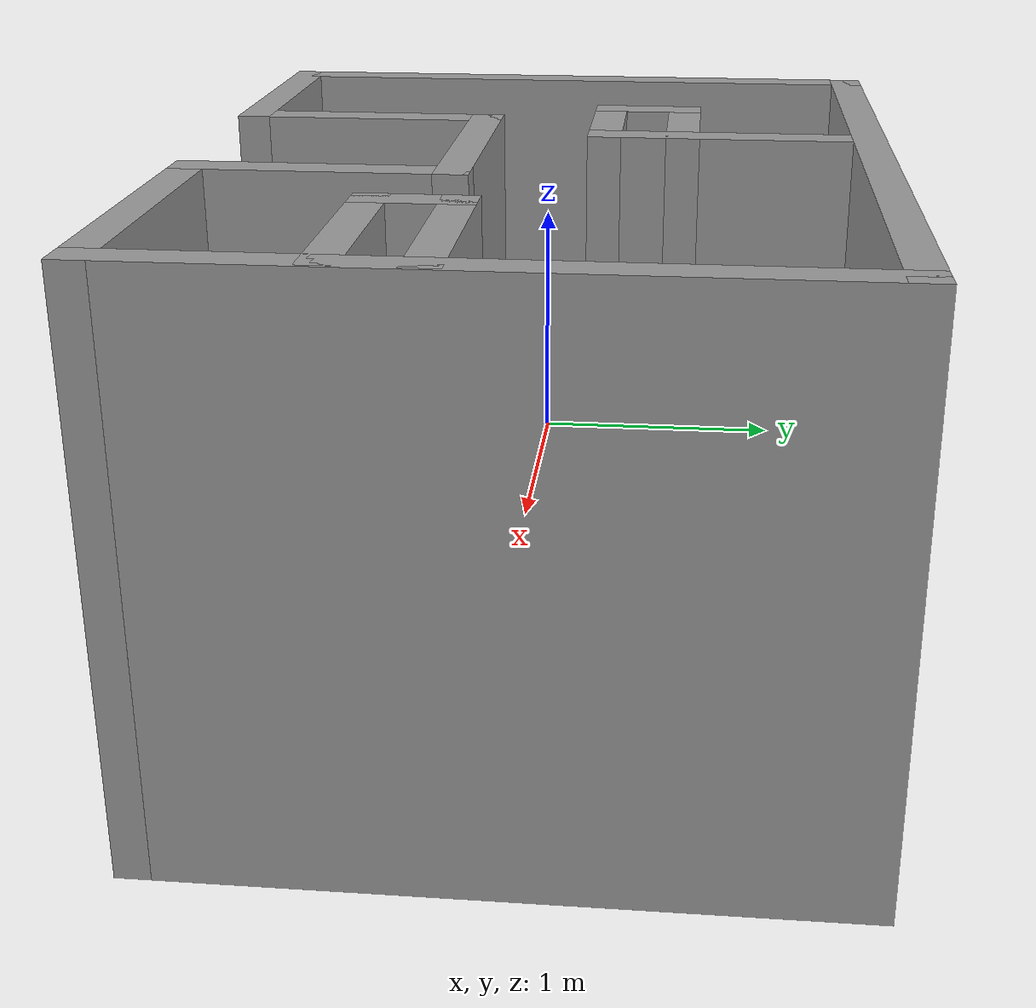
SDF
<?xml version='1.0'?>
<sdf version='1.6'>
  <model name='capstone_map'>
    <pose frame=''>0.08079 -0.021487 0 0 -0 0</pose>
    <link name='Wall_1'>
      <collision name='Wall_1_Collision'>
        <geometry>
          <box>
            <size>3.7 0.15 2.5</size>
          </box>
        </geometry>
        <pose frame=''>0 0 0.05 0 -0 0</pose>
      </collision>
      <visual name='Wall_1_Visual'>
        <pose frame=''>0 0 0.05 0 -0 0</pose>
        <geometry>
          <box>
            <size>3.7 0.15 2.5</size>
          </box>
        </geometry>
        <material>
          <script>
            <uri>file://media/materials/scripts/gazebo.material</uri>
            <name>Gazebo/Grey</name>
          </script>
          <ambient>1 1 1 1</ambient>
        </material>
        <meta>
          <layer>0</layer>
        </meta>
      </visual>
      <pose frame=''>0 1.425 0 0 -0 0</pose>
    </link>
    <link name='Wall_10'>
      <collision name='Wall_10_Collision'>
        <geometry>
          <box>
            <size>1.25 0.15 2.5</size>
          </box>
        </geometry>
        <pose frame=''>0 0 0.05 0 -0 0</pose>
      </collision>
      <visual name='Wall_10_Visual'>
        <pose frame=''>0 0 0.05 0 -0 0</pose>
        <geometry>
          <box>
            <size>1.25 0.15 2.5</size>
          </box>
        </geometry>
        <material>
          <script>
            <uri>file://media/materials/scripts/gazebo.material</uri>
            <name>Gazebo/Grey</name>
          </script>
          <ambient>1 1 1 1</ambient>
        </material>
        <meta>
          <layer>0</layer>
        </meta>
      </visual>
      <pose frame=''>-0.361312 0.800672 0 0 -0 -1.5708</pose>
    </link>
    <link name='Wall_11'>
      <collision name='Wall_11_Collision'>
        <geometry>
          <box>
            <size>0.75 0.15 2.5</size>
          </box>
        </geometry>
        <pose frame=''>0 0 0.05 0 -0 0</pose>
      </collision>
      <visual name='Wall_11_Visual'>
        <pose frame=''>0 0 0.05 0 -0 0</pose>
        <geometry>
          <box>
            <size>0.75 0.15 2.5</size>
          </box>
        </geometry>
        <material>
          <script>
            <uri>file://media/materials/scripts/gazebo.material</uri>
            <name>Gazebo/Grey</name>
          </script>
          <ambient>1 1 1 1</ambient>
        </material>
        <meta>
          <layer>0</layer>
        </meta>
      </visual>
      <pose frame=''>-0.661312 0.250672 0 0 -0 3.14159</pose>
    </link>
    <link name='Wall_14'>
      <collision name='Wall_14_Collision'>
        <geometry>
          <box>
            <size>0.5 0.15 2.5</size>
          </box>
        </geometry>
        <pose frame=''>0 0 0.05 0 -0 0</pose>
      </collision>
      <visual name='Wall_14_Visual'>
        <pose frame=''>0 0 0.05 0 -0 0</pose>
        <geometry>
          <box>
            <size>0.5 0.15 2.5</size>
          </box>
        </geometry>
        <material>
          <script>
            <uri>file://media/materials/scripts/gazebo.material</uri>
            <name>Gazebo/Grey</name>
          </script>
          <ambient>1 1 1 1</ambient>
        </material>
        <meta>
          <layer>0</layer>
        </meta>
      </visual>
      <pose frame=''>-0.961312 0.425672 0 0 -0 1.5708</pose>
    </link>
    <link name='Wall_15'>
      <collision name='Wall_15_Collision'>
        <geometry>
          <box>
            <size>0.75 0.15 2.5</size>
          </box>
        </geometry>
        <pose frame=''>0 0 0.05 0 -0 0</pose>
      </collision>
      <visual name='Wall_15_Visual'>
        <pose frame=''>0 0 0.05 0 -0 0</pose>
        <geometry>
          <box>
            <size>0.75 0.15 2.5</size>
          </box>
        </geometry>
        <material>
          <script>
            <uri>file://media/materials/scripts/gazebo.material</uri>
            <name>Gazebo/Grey</name>
          </script>
          <ambient>1 1 1 1</ambient>
        </material>
        <meta>
          <layer>0</layer>
        </meta>
      </visual>
      <pose frame=''>-0.661312 0.600672 0 0 -0 0</pose>
    </link>
    <link name='Wall_2'>
      <collision name='Wall_2_Collision'>
        <geometry>
          <box>
            <size>3 0.15 2.5</size>
          </box>
        </geometry>
        <pose frame=''>0 0 0.05 0 -0 0</pose>
      </collision>
      <visual name='Wall_2_Visual'>
        <pose frame=''>0 0 0.05 0 -0 0</pose>
        <geometry>
          <box>
            <size>3 0.15 2.5</size>
          </box>
        </geometry>
        <material>
          <script>
            <uri>file://media/materials/scripts/gazebo.material</uri>
            <name>Gazebo/Grey</name>
          </script>
          <ambient>1 1 1 1</ambient>
        </material>
        <meta>
          <layer>0</layer>
        </meta>
      </visual>
      <pose frame=''>1.775 -0 0 0 -0 -1.5708</pose>
    </link>
    <link name='Wall_21'>
      <collision name='Wall_21_Collision'>
        <geometry>
          <box>
            <size>1 0.15 2.5</size>
          </box>
        </geometry>
        <pose frame=''>0 0 0.05 0 -0 0</pose>
      </collision>
      <visual name='Wall_21_Visual'>
        <pose frame=''>0 0 0.05 0 -0 0</pose>
        <geometry>
          <box>
            <size>1 0.15 2.5</size>
          </box>
        </geometry>
        <material>
          <script>
            <uri>file://media/materials/scripts/gazebo.material</uri>
            <name>Gazebo/Grey</name>
          </script>
          <ambient>1 1 1 1</ambient>
        </material>
        <meta>
          <layer>0</layer>
        </meta>
      </visual>
      <pose frame=''>1.33489 -0.227367 0 0 -0 3.14159</pose>
    </link>
    <link name='Wall_22'>
      <collision name='Wall_22_Collision'>
        <geometry>
          <box>
            <size>0.5 0.15 2.5</size>
          </box>
        </geometry>
        <pose frame=''>0 0 0.05 0 -0 0</pose>
      </collision>
      <visual name='Wall_22_Visual'>
        <pose frame=''>0 0 0.05 0 -0 0</pose>
        <geometry>
          <box>
            <size>0.5 0.15 2.5</size>
          </box>
        </geometry>
        <material>
          <script>
            <uri>file://media/materials/scripts/gazebo.material</uri>
            <name>Gazebo/Grey</name>
          </script>
          <ambient>1 1 1 1</ambient>
        </material>
        <meta>
          <layer>0</layer>
        </meta>
      </visual>
      <pose frame=''>0.909893 -0.402367 0 0 -0 -1.5708</pose>
    </link>
    <link name='Wall_23'>
      <collision name='Wall_23_Collision'>
        <geometry>
          <box>
            <size>1 0.15 2.5</size>
          </box>
        </geometry>
        <pose frame=''>0 0 0.05 0 -0 0</pose>
      </collision>
      <visual name='Wall_23_Visual'>
        <pose frame=''>0 0 0.05 0 -0 0</pose>
        <geometry>
          <box>
            <size>1 0.15 2.5</size>
          </box>
        </geometry>
        <material>
          <script>
            <uri>file://media/materials/scripts/gazebo.material</uri>
            <name>Gazebo/Grey</name>
          </script>
          <ambient>1 1 1 1</ambient>
        </material>
        <meta>
          <layer>0</layer>
        </meta>
      </visual>
      <pose frame=''>1.33489 -0.577367 0 0 -0 0</pose>
    </link>
    <link name='Wall_3'>
      <collision name='Wall_3_Collision'>
        <geometry>
          <box>
            <size>1.5 0.15 2.5</size>
          </box>
        </geometry>
        <pose frame=''>0 0 0.05 0 -0 0</pose>
      </collision>
      <visual name='Wall_3_Visual'>
        <pose frame=''>0 0 0.05 0 -0 0</pose>
        <geometry>
          <box>
            <size>1.5 0.15 2.5</size>
          </box>
        </geometry>
        <material>
          <script>
            <uri>file://media/materials/scripts/gazebo.material</uri>
            <name>Gazebo/Grey</name>
          </script>
          <ambient>1 1 1 1</ambient>
        </material>
        <meta>
          <layer>0</layer>
        </meta>
      </visual>
      <pose frame=''>1.1 -1.425 0 0 -0 3.14159</pose>
    </link>
    <link name='Wall_4'>
      <collision name='Wall_4_Collision'>
        <geometry>
          <box>
            <size>1.25 0.15 2.5</size>
          </box>
        </geometry>
        <pose frame=''>0 0 0.05 0 -0 0</pose>
      </collision>
      <visual name='Wall_4_Visual'>
        <pose frame=''>0 0 0.05 0 -0 0</pose>
        <geometry>
          <box>
            <size>1.25 0.15 2.5</size>
          </box>
        </geometry>
        <material>
          <script>
            <uri>file://media/materials/scripts/gazebo.material</uri>
            <name>Gazebo/Grey</name>
          </script>
          <ambient>1 1 1 1</ambient>
        </material>
        <meta>
          <layer>0</layer>
        </meta>
      </visual>
      <pose frame=''>0.425 -0.875 0 0 -0 1.5708</pose>
    </link>
    <link name='Wall_5'>
      <collision name='Wall_5_Collision'>
        <geometry>
          <box>
            <size>1.25 0.15 2.5</size>
          </box>
        </geometry>
        <pose frame=''>0 0 0.05 0 -0 0</pose>
      </collision>
      <visual name='Wall_5_Visual'>
        <pose frame=''>0 0 0.05 0 -0 0</pose>
        <geometry>
          <box>
            <size>1.25 0.15 2.5</size>
          </box>
        </geometry>
        <material>
          <script>
            <uri>file://media/materials/scripts/gazebo.material</uri>
            <name>Gazebo/Grey</name>
          </script>
          <ambient>1 1 1 1</ambient>
        </material>
        <meta>
          <layer>0</layer>
        </meta>
      </visual>
      <pose frame=''>-0.125 -0.325 0 0 -0 3.14159</pose>
    </link>
    <link name='Wall_6'>
      <collision name='Wall_6_Collision'>
        <geometry>
          <box>
            <size>1.25 0.15 2.5</size>
          </box>
        </geometry>
        <pose frame=''>0 0 0.05 0 -0 0</pose>
      </collision>
      <visual name='Wall_6_Visual'>
        <pose frame=''>0 0 0.05 0 -0 0</pose>
        <geometry>
          <box>
            <size>1.25 0.15 2.5</size>
          </box>
        </geometry>
        <material>
          <script>
            <uri>file://media/materials/scripts/gazebo.material</uri>
            <name>Gazebo/Grey</name>
          </script>
          <ambient>1 1 1 1</ambient>
        </material>
        <meta>
          <layer>0</layer>
        </meta>
      </visual>
      <pose frame=''>-0.675 -0.875 0 0 -0 -1.5708</pose>
    </link>
    <link name='Wall_7'>
      <collision name='Wall_7_Collision'>
        <geometry>
          <box>
            <size>1.25 0.15 2.5</size>
          </box>
        </geometry>
        <pose frame=''>0 0 0.05 0 -0 0</pose>
      </collision>
      <visual name='Wall_7_Visual'>
        <pose frame=''>0 0 0.05 0 -0 0</pose>
        <geometry>
          <box>
            <size>1.25 0.15 2.5</size>
          </box>
        </geometry>
        <material>
          <script>
            <uri>file://media/materials/scripts/gazebo.material</uri>
            <name>Gazebo/Grey</name>
          </script>
          <ambient>1 1 1 1</ambient>
        </material>
        <meta>
          <layer>0</layer>
        </meta>
      </visual>
      <pose frame=''>-1.225 -1.425 0 0 -0 3.14159</pose>
    </link>
    <link name='Wall_8'>
      <collision name='Wall_8_Collision'>
        <geometry>
          <box>
            <size>3 0.15 2.5</size>
          </box>
        </geometry>
        <pose frame=''>0 0 0.05 0 -0 0</pose>
      </collision>
      <visual name='Wall_8_Visual'>
        <pose frame=''>0 0 0.05 0 -0 0</pose>
        <geometry>
          <box>
            <size>3 0.15 2.5</size>
          </box>
        </geometry>
        <material>
          <script>
            <uri>file://media/materials/scripts/gazebo.material</uri>
            <name>Gazebo/Grey</name>
          </script>
          <ambient>1 1 1 1</ambient>
        </material>
        <meta>
          <layer>0</layer>
        </meta>
      </visual>
      <pose frame=''>-1.775 -0 0 0 -0 1.5708</pose>
    </link>
    <static>1</static>
  </model>
</sdf>
